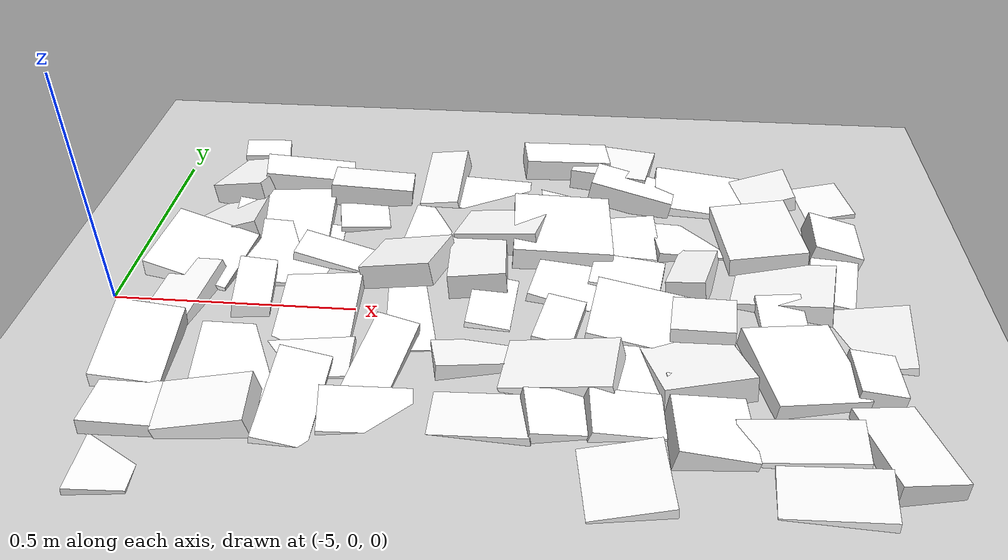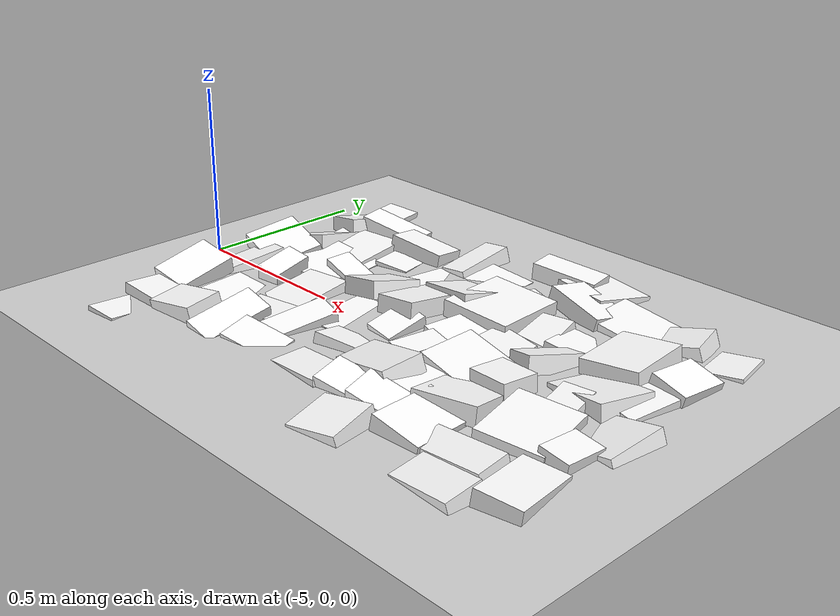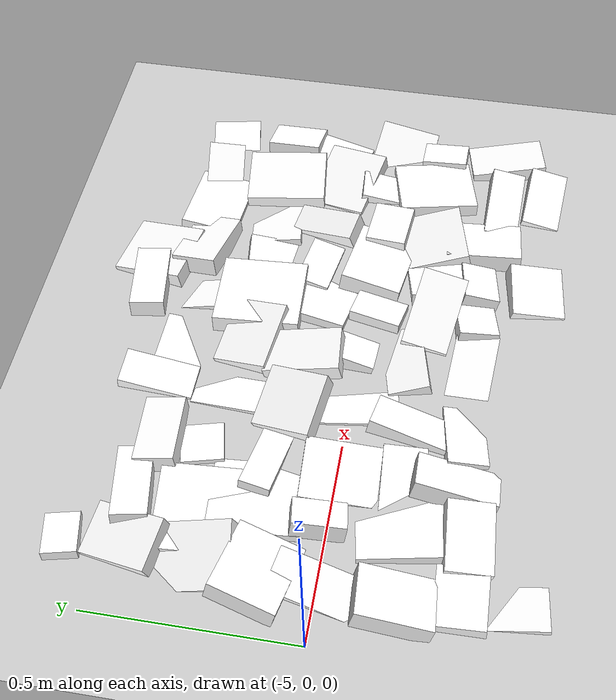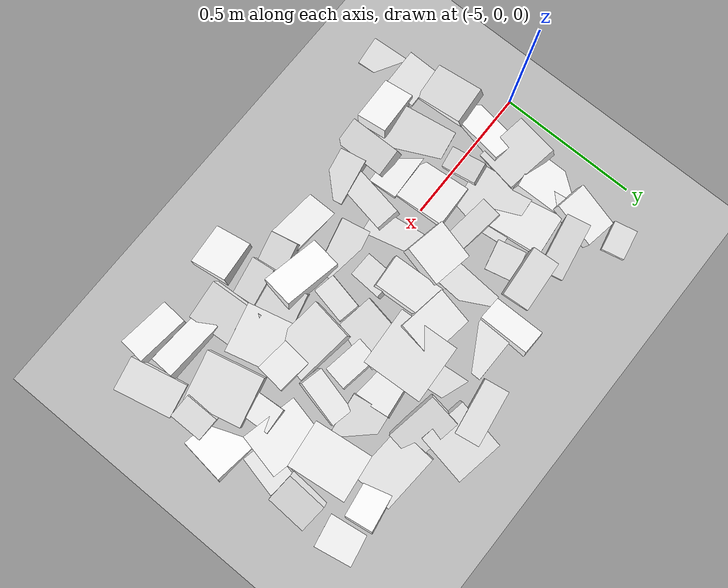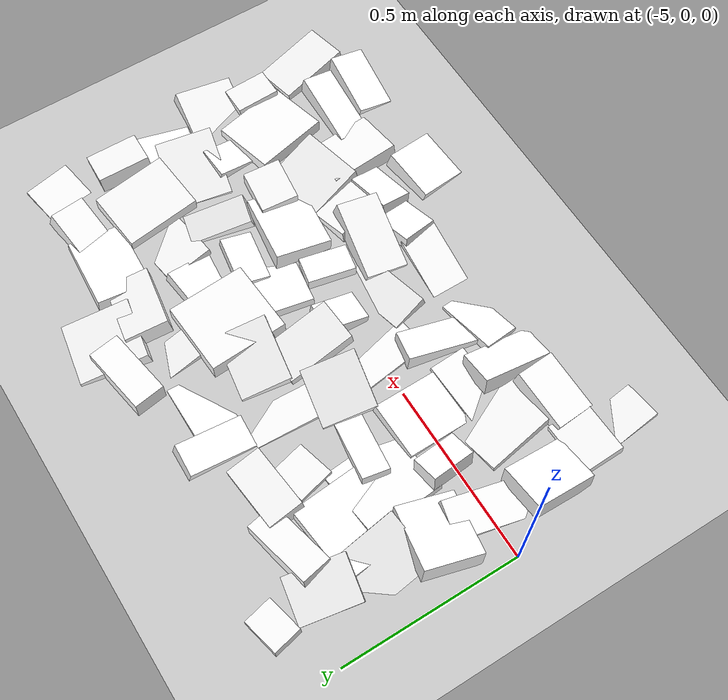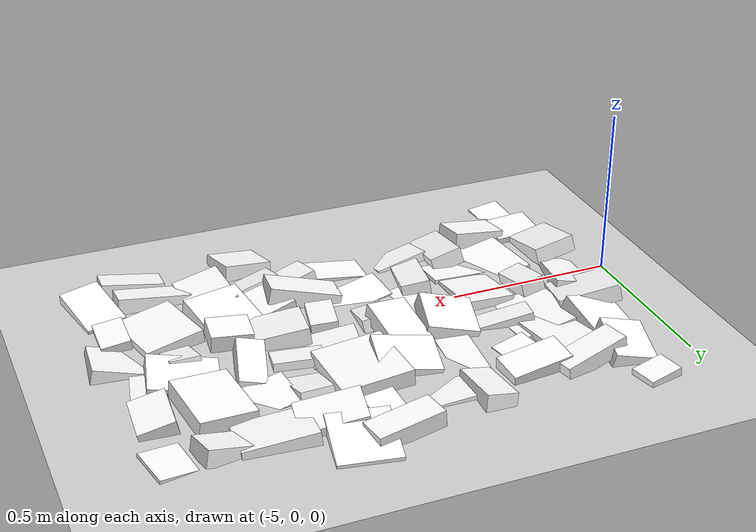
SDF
<sdf version="1.7">
 <world name="default">
  <include><uri>model://sun</uri></include>
  <include><uri>model://ground_plane</uri></include>
  <model name="static_environment">
   <static>true</static>
   <link name="region_133">
    <pose>-3.9795089519257782 0.574649046125805 0.00044835079384081267 0.170214213032232 -0.007524654286323484 2.965011449339123</pose>
    <collision name="region_133_collision">
     <geometry><box><size>0.17534049738056207 0.18718979881708145 0.05</size></box></geometry>
     <surface><friction><ode><mu>1.0</mu><mu2>1.0</mu2></ode></friction></surface>
    </collision>
    <visual name="region_133_visual">
     <geometry><box><size>0.17534049738056207 0.18718979881708145 0.05</size></box></geometry>
     <material><ambient>1.0 1.0 1.0 1.0</ambient><diffuse>1.0 1.0 1.0 1.0</diffuse></material>
    </visual>
   </link>
   <link name="region_134">
    <pose>-4.094930638773095 0.5717928075139347 0.023055060772423225 -0.009833687898736843 -0.0800342305586077 3.3000092581641702</pose>
    <collision name="region_134_collision">
     <geometry><box><size>0.19889755639854195 0.08673962148626173 0.05</size></box></geometry>
     <surface><friction><ode><mu>1.0</mu><mu2>1.0</mu2></ode></friction></surface>
    </collision>
    <visual name="region_134_visual">
     <geometry><box><size>0.19889755639854195 0.08673962148626173 0.05</size></box></geometry>
     <material><ambient>1.0 1.0 1.0 1.0</ambient><diffuse>1.0 1.0 1.0 1.0</diffuse></material>
    </visual>
   </link>
   <link name="region_139">
    <pose>-4.836495799420705 0.5837706913059889 -0.004070651850384289 0.017284858585840723 -0.09719315389216904 3.359345084625111</pose>
    <collision name="region_139_collision">
     <geometry><box><size>0.10582122075447274 0.08154338717244526 0.05</size></box></geometry>
     <surface><friction><ode><mu>1.0</mu><mu2>1.0</mu2></ode></friction></surface>
    </collision>
    <visual name="region_139_visual">
     <geometry><box><size>0.10582122075447274 0.08154338717244526 0.05</size></box></geometry>
     <material><ambient>1.0 1.0 1.0 1.0</ambient><diffuse>1.0 1.0 1.0 1.0</diffuse></material>
    </visual>
   </link>
   <link name="region_150">
    <pose>-3.501549717466175 0.4717631532022559 -0.022139818051866655 0.0042888951992146596 0.09757328563466916 3.3284522985641787</pose>
    <collision name="region_150_collision">
     <geometry><box><size>0.12426772657355908 0.1330524193768934 0.05</size></box></geometry>
     <surface><friction><ode><mu>1.0</mu><mu2>1.0</mu2></ode></friction></surface>
    </collision>
    <visual name="region_150_visual">
     <geometry><box><size>0.12426772657355908 0.1330524193768934 0.05</size></box></geometry>
     <material><ambient>1.0 1.0 1.0 1.0</ambient><diffuse>1.0 1.0 1.0 1.0</diffuse></material>
    </visual>
   </link>
   <link name="region_151">
    <pose>-3.6345684079839256 0.4764251820763707 0.005187594577890909 -0.14557207132012523 0.24685727497245558 3.281161751918272</pose>
    <collision name="region_151_collision">
     <geometry><box><size>0.1298728478875402 0.10021600310100176 0.05</size></box></geometry>
     <surface><friction><ode><mu>1.0</mu><mu2>1.0</mu2></ode></friction></surface>
    </collision>
    <visual name="region_151_visual">
     <geometry><box><size>0.1298728478875402 0.10021600310100176 0.05</size></box></geometry>
     <material><ambient>1.0 1.0 1.0 1.0</ambient><diffuse>1.0 1.0 1.0 1.0</diffuse></material>
    </visual>
   </link>
   <link name="region_152">
    <pose>-3.7811806753105435 0.46335909322320223 -0.003623981192343067 -0.09056033977986166 -0.08234724325951992 3.076538613729159</pose>
    <collision name="region_152_collision">
     <geometry><box><size>0.2097559328130741 0.1493497404227089 0.05</size></box></geometry>
     <surface><friction><ode><mu>1.0</mu><mu2>1.0</mu2></ode></friction></surface>
    </collision>
    <visual name="region_152_visual">
     <geometry><box><size>0.2097559328130741 0.1493497404227089 0.05</size></box></geometry>
     <material><ambient>1.0 1.0 1.0 1.0</ambient><diffuse>1.0 1.0 1.0 1.0</diffuse></material>
    </visual>
   </link>
   <link name="region_153">
    <pose>-3.937463878106142 0.45701922625572167 0.01481089140452365 0.15445395185810312 -0.16435714184399508 2.969763489640336</pose>
    <collision name="region_153_collision">
     <geometry><box><size>0.18700749862652458 0.12020930522267306 0.05</size></box></geometry>
     <surface><friction><ode><mu>1.0</mu><mu2>1.0</mu2></ode></friction></surface>
    </collision>
    <visual name="region_153_visual">
     <geometry><box><size>0.18700749862652458 0.12020930522267306 0.05</size></box></geometry>
     <material><ambient>1.0 1.0 1.0 1.0</ambient><diffuse>1.0 1.0 1.0 1.0</diffuse></material>
    </visual>
   </link>
   <link name="region_154">
    <pose>-4.0982184114410884 0.43112996197274955 -0.0222439493188153 0.15413326450859954 -0.0736210067693357 3.2367414242147836</pose>
    <collision name="region_154_collision">
     <geometry><box><size>0.0939086746460353 0.12610695431808672 0.05</size></box></geometry>
     <surface><friction><ode><mu>1.0</mu><mu2>1.0</mu2></ode></friction></surface>
    </collision>
    <visual name="region_154_visual">
     <geometry><box><size>0.0939086746460353 0.12610695431808672 0.05</size></box></geometry>
     <material><ambient>1.0 1.0 1.0 1.0</ambient><diffuse>1.0 1.0 1.0 1.0</diffuse></material>
    </visual>
   </link>
   <link name="region_155">
    <pose>-4.26429904964434 0.44894758650820266 -0.024382924216087995 -0.09701220259592974 -0.05631189676451864 3.136482111701895</pose>
    <collision name="region_155_collision">
     <geometry><box><size>0.17497054567080686 0.11994226667458904 0.05</size></box></geometry>
     <surface><friction><ode><mu>1.0</mu><mu2>1.0</mu2></ode></friction></surface>
    </collision>
    <visual name="region_155_visual">
     <geometry><box><size>0.17497054567080686 0.11994226667458904 0.05</size></box></geometry>
     <material><ambient>1.0 1.0 1.0 1.0</ambient><diffuse>1.0 1.0 1.0 1.0</diffuse></material>
    </visual>
   </link>
   <link name="region_156">
    <pose>-4.376294951007065 0.47972937947673633 0.0019502048551304774 -0.16139881131398393 0.13432908697854268 3.093017583781916</pose>
    <collision name="region_156_collision">
     <geometry><box><size>0.08874882262221645 0.18478351056948586 0.05</size></box></geometry>
     <surface><friction><ode><mu>1.0</mu><mu2>1.0</mu2></ode></friction></surface>
    </collision>
    <visual name="region_156_visual">
     <geometry><box><size>0.08874882262221645 0.18478351056948586 0.05</size></box></geometry>
     <material><ambient>1.0 1.0 1.0 1.0</ambient><diffuse>1.0 1.0 1.0 1.0</diffuse></material>
    </visual>
   </link>
   <link name="region_157">
    <pose>-4.541505392615168 0.42928006592529067 0.01386972632482305 0.11793235004464825 -0.1037312264085109 3.226270425010195</pose>
    <collision name="region_157_collision">
     <geometry><box><size>0.18528931789354486 0.09819742179364188 0.05</size></box></geometry>
     <surface><friction><ode><mu>1.0</mu><mu2>1.0</mu2></ode></friction></surface>
    </collision>
    <visual name="region_157_visual">
     <geometry><box><size>0.18528931789354486 0.09819742179364188 0.05</size></box></geometry>
     <material><ambient>1.0 1.0 1.0 1.0</ambient><diffuse>1.0 1.0 1.0 1.0</diffuse></material>
    </visual>
   </link>
   <link name="region_158">
    <pose>-4.696038178157421 0.45452142723220934 0.024356395909022756 -0.025953468332759022 -0.18295366509076916 3.34071855874957</pose>
    <collision name="region_158_collision">
     <geometry><box><size>0.2033711821210401 0.08479166280243756 0.05</size></box></geometry>
     <surface><friction><ode><mu>1.0</mu><mu2>1.0</mu2></ode></friction></surface>
    </collision>
    <visual name="region_158_visual">
     <geometry><box><size>0.2033711821210401 0.08479166280243756 0.05</size></box></geometry>
     <material><ambient>1.0 1.0 1.0 1.0</ambient><diffuse>1.0 1.0 1.0 1.0</diffuse></material>
    </visual>
   </link>
   <link name="region_159">
    <pose>-4.823823090812478 0.43979105658319595 0.014988513643660821 0.15643175212717803 0.20947934922514366 2.966412801531626</pose>
    <collision name="region_159_collision">
     <geometry><box><size>0.12500217326562607 0.16507961312182964 0.05</size></box></geometry>
     <surface><friction><ode><mu>1.0</mu><mu2>1.0</mu2></ode></friction></surface>
    </collision>
    <visual name="region_159_visual">
     <geometry><box><size>0.12500217326562607 0.16507961312182964 0.05</size></box></geometry>
     <material><ambient>1.0 1.0 1.0 1.0</ambient><diffuse>1.0 1.0 1.0 1.0</diffuse></material>
    </visual>
   </link>
   <link name="region_170">
    <pose>-3.507600614443394 0.2881663709877289 0.010369644690111923 0.06986474430687106 -0.22894318589666007 3.0641063771314743</pose>
    <collision name="region_170_collision">
     <geometry><box><size>0.10536326010167556 0.14612067975087553 0.05</size></box></geometry>
     <surface><friction><ode><mu>1.0</mu><mu2>1.0</mu2></ode></friction></surface>
    </collision>
    <visual name="region_170_visual">
     <geometry><box><size>0.10536326010167556 0.14612067975087553 0.05</size></box></geometry>
     <material><ambient>1.0 1.0 1.0 1.0</ambient><diffuse>1.0 1.0 1.0 1.0</diffuse></material>
    </visual>
   </link>
   <link name="region_171">
    <pose>-3.668316521911214 0.2886939156214142 0.017605253919817453 0.03296478802090108 0.08572706935795238 3.2608488976659937</pose>
    <collision name="region_171_collision">
     <geometry><box><size>0.16619526351678537 0.21172243492698042 0.05</size></box></geometry>
     <surface><friction><ode><mu>1.0</mu><mu2>1.0</mu2></ode></friction></surface>
    </collision>
    <visual name="region_171_visual">
     <geometry><box><size>0.16619526351678537 0.21172243492698042 0.05</size></box></geometry>
     <material><ambient>1.0 1.0 1.0 1.0</ambient><diffuse>1.0 1.0 1.0 1.0</diffuse></material>
    </visual>
   </link>
   <link name="region_172">
    <pose>-3.79854663270844 0.28929207426471015 -0.023704180302129802 0.09343863976034272 -0.1288095050315436 3.2650099319183234</pose>
    <collision name="region_172_collision">
     <geometry><box><size>0.19432395758099788 0.13422188477039676 0.05</size></box></geometry>
     <surface><friction><ode><mu>1.0</mu><mu2>1.0</mu2></ode></friction></surface>
    </collision>
    <visual name="region_172_visual">
     <geometry><box><size>0.19432395758099788 0.13422188477039676 0.05</size></box></geometry>
     <material><ambient>1.0 1.0 1.0 1.0</ambient><diffuse>1.0 1.0 1.0 1.0</diffuse></material>
    </visual>
   </link>
   <link name="region_173">
    <pose>-3.9678311583523698 0.27673564445606436 -0.015517437492212571 -0.22931290725654985 0.04888858812818686 3.256254680707327</pose>
    <collision name="region_173_collision">
     <geometry><box><size>0.16971889044296298 0.1339951754151947 0.05</size></box></geometry>
     <surface><friction><ode><mu>1.0</mu><mu2>1.0</mu2></ode></friction></surface>
    </collision>
    <visual name="region_173_visual">
     <geometry><box><size>0.16971889044296298 0.1339951754151947 0.05</size></box></geometry>
     <material><ambient>1.0 1.0 1.0 1.0</ambient><diffuse>1.0 1.0 1.0 1.0</diffuse></material>
    </visual>
   </link>
   <link name="region_174">
    <pose>-4.094341893352273 0.27863565437505555 0.017640977484312023 0.006459481364513797 -0.05468793864959892 3.1951904326741163</pose>
    <collision name="region_174_collision">
     <geometry><box><size>0.2117453371799521 0.2190020692192252 0.05</size></box></geometry>
     <surface><friction><ode><mu>1.0</mu><mu2>1.0</mu2></ode></friction></surface>
    </collision>
    <visual name="region_174_visual">
     <geometry><box><size>0.2117453371799521 0.2190020692192252 0.05</size></box></geometry>
     <material><ambient>1.0 1.0 1.0 1.0</ambient><diffuse>1.0 1.0 1.0 1.0</diffuse></material>
    </visual>
   </link>
   <link name="region_175">
    <pose>-4.223196349004232 0.27368066382770534 0.014698083292538987 0.19966338633009162 0.15414834099931374 2.998161887427554</pose>
    <collision name="region_175_collision">
     <geometry><box><size>0.18135667290933993 0.13857290186814222 0.05</size></box></geometry>
     <surface><friction><ode><mu>1.0</mu><mu2>1.0</mu2></ode></friction></surface>
    </collision>
    <visual name="region_175_visual">
     <geometry><box><size>0.18135667290933993 0.13857290186814222 0.05</size></box></geometry>
     <material><ambient>1.0 1.0 1.0 1.0</ambient><diffuse>1.0 1.0 1.0 1.0</diffuse></material>
    </visual>
   </link>
   <link name="region_176">
    <pose>-4.391483473223296 0.27367705466088404 -0.022658009665344415 0.043425796888531154 -0.07137661800411294 3.0786752252215313</pose>
    <collision name="region_176_collision">
     <geometry><box><size>0.09762890317799491 0.22073841437311614 0.05</size></box></geometry>
     <surface><friction><ode><mu>1.0</mu><mu2>1.0</mu2></ode></friction></surface>
    </collision>
    <visual name="region_176_visual">
     <geometry><box><size>0.09762890317799491 0.22073841437311614 0.05</size></box></geometry>
     <material><ambient>1.0 1.0 1.0 1.0</ambient><diffuse>1.0 1.0 1.0 1.0</diffuse></material>
    </visual>
   </link>
   <link name="region_177">
    <pose>-4.545753503291472 0.3283131357378465 -0.01949619642523295 0.03202887495100709 -0.10392997606887072 3.3707311001568585</pose>
    <collision name="region_177_collision">
     <geometry><box><size>0.10928244734717256 0.10323825948265071 0.05</size></box></geometry>
     <surface><friction><ode><mu>1.0</mu><mu2>1.0</mu2></ode></friction></surface>
    </collision>
    <visual name="region_177_visual">
     <geometry><box><size>0.10928244734717256 0.10323825948265071 0.05</size></box></geometry>
     <material><ambient>1.0 1.0 1.0 1.0</ambient><diffuse>1.0 1.0 1.0 1.0</diffuse></material>
    </visual>
   </link>
   <link name="region_178">
    <pose>-4.720405187765419 0.285322319762648 -0.008647692328182185 -0.07671111084763449 0.0054481557765695965 3.244484316516232</pose>
    <collision name="region_178_collision">
     <geometry><box><size>0.2196614902504646 0.2227195221169087 0.05</size></box></geometry>
     <surface><friction><ode><mu>1.0</mu><mu2>1.0</mu2></ode></friction></surface>
    </collision>
    <visual name="region_178_visual">
     <geometry><box><size>0.2196614902504646 0.2227195221169087 0.05</size></box></geometry>
     <material><ambient>1.0 1.0 1.0 1.0</ambient><diffuse>1.0 1.0 1.0 1.0</diffuse></material>
    </visual>
   </link>
   <link name="region_179">
    <pose>-4.837683751294579 0.2915425646125662 -0.004209977211674026 0.2318473825692236 0.23224546902507015 3.2923529911103127</pose>
    <collision name="region_179_collision">
     <geometry><box><size>0.15752704659282607 0.20813670010384766 0.05</size></box></geometry>
     <surface><friction><ode><mu>1.0</mu><mu2>1.0</mu2></ode></friction></surface>
    </collision>
    <visual name="region_179_visual">
     <geometry><box><size>0.15752704659282607 0.20813670010384766 0.05</size></box></geometry>
     <material><ambient>1.0 1.0 1.0 1.0</ambient><diffuse>1.0 1.0 1.0 1.0</diffuse></material>
    </visual>
   </link>
   <link name="region_190">
    <pose>-3.5299189631916894 0.1510806082933005 -0.009134467195322727 -0.08049755297903921 -0.05061615037986461 2.9399321404416763</pose>
    <collision name="region_190_collision">
     <geometry><box><size>0.09785876449965346 0.1464472158214041 0.05</size></box></geometry>
     <surface><friction><ode><mu>1.0</mu><mu2>1.0</mu2></ode></friction></surface>
    </collision>
    <visual name="region_190_visual">
     <geometry><box><size>0.09785876449965346 0.1464472158214041 0.05</size></box></geometry>
     <material><ambient>1.0 1.0 1.0 1.0</ambient><diffuse>1.0 1.0 1.0 1.0</diffuse></material>
    </visual>
   </link>
   <link name="region_191">
    <pose>-3.6297818503123445 0.12183835689815216 -0.0044859342985503585 0.07317742830067642 0.17660192533636426 2.9276869945220247</pose>
    <collision name="region_191_collision">
     <geometry><box><size>0.20082703177499545 0.1599241899353591 0.05</size></box></geometry>
     <surface><friction><ode><mu>1.0</mu><mu2>1.0</mu2></ode></friction></surface>
    </collision>
    <visual name="region_191_visual">
     <geometry><box><size>0.20082703177499545 0.1599241899353591 0.05</size></box></geometry>
     <material><ambient>1.0 1.0 1.0 1.0</ambient><diffuse>1.0 1.0 1.0 1.0</diffuse></material>
    </visual>
   </link>
   <link name="region_192">
    <pose>-3.815995573507702 0.1472315341989627 0.010931407661523604 0.21279713986770654 0.19934674387777757 2.928013825051837</pose>
    <collision name="region_192_collision">
     <geometry><box><size>0.08049794742514396 0.17107467915113123 0.05</size></box></geometry>
     <surface><friction><ode><mu>1.0</mu><mu2>1.0</mu2></ode></friction></surface>
    </collision>
    <visual name="region_192_visual">
     <geometry><box><size>0.08049794742514396 0.17107467915113123 0.05</size></box></geometry>
     <material><ambient>1.0 1.0 1.0 1.0</ambient><diffuse>1.0 1.0 1.0 1.0</diffuse></material>
    </visual>
   </link>
   <link name="region_193">
    <pose>-3.9525459149481166 0.14922839498735907 -0.008545288755037479 -0.15647982140211764 -0.015220761575641395 2.979083152136356</pose>
    <collision name="region_193_collision">
     <geometry><box><size>0.14874525593005802 0.08733805480922513 0.05</size></box></geometry>
     <surface><friction><ode><mu>1.0</mu><mu2>1.0</mu2></ode></friction></surface>
    </collision>
    <visual name="region_193_visual">
     <geometry><box><size>0.14874525593005802 0.08733805480922513 0.05</size></box></geometry>
     <material><ambient>1.0 1.0 1.0 1.0</ambient><diffuse>1.0 1.0 1.0 1.0</diffuse></material>
    </visual>
   </link>
   <link name="region_194">
    <pose>-4.071745830538734 0.13426798860974082 -0.01375707141590124 -0.03591319916329949 -0.16779594189138808 2.9677213369479447</pose>
    <collision name="region_194_collision">
     <geometry><box><size>0.14831460924106524 0.18510410539015726 0.05</size></box></geometry>
     <surface><friction><ode><mu>1.0</mu><mu2>1.0</mu2></ode></friction></surface>
    </collision>
    <visual name="region_194_visual">
     <geometry><box><size>0.14831460924106524 0.18510410539015726 0.05</size></box></geometry>
     <material><ambient>1.0 1.0 1.0 1.0</ambient><diffuse>1.0 1.0 1.0 1.0</diffuse></material>
    </visual>
   </link>
   <link name="region_195">
    <pose>-4.263401470788022 0.1351513484429039 0.02485550375131445 0.18413107651438082 0.07073730432877251 3.2294726165853174</pose>
    <collision name="region_195_collision">
     <geometry><box><size>0.11882376036206337 0.19308182914945735 0.05</size></box></geometry>
     <surface><friction><ode><mu>1.0</mu><mu2>1.0</mu2></ode></friction></surface>
    </collision>
    <visual name="region_195_visual">
     <geometry><box><size>0.11882376036206337 0.19308182914945735 0.05</size></box></geometry>
     <material><ambient>1.0 1.0 1.0 1.0</ambient><diffuse>1.0 1.0 1.0 1.0</diffuse></material>
    </visual>
   </link>
   <link name="region_196">
    <pose>-4.411988027600259 0.13660639349209888 0.02430145678127188 0.19727016395654356 0.23915313570790642 2.9805661914501216</pose>
    <collision name="region_196_collision">
     <geometry><box><size>0.1572895146162047 0.1485146122661266 0.05</size></box></geometry>
     <surface><friction><ode><mu>1.0</mu><mu2>1.0</mu2></ode></friction></surface>
    </collision>
    <visual name="region_196_visual">
     <geometry><box><size>0.1572895146162047 0.1485146122661266 0.05</size></box></geometry>
     <material><ambient>1.0 1.0 1.0 1.0</ambient><diffuse>1.0 1.0 1.0 1.0</diffuse></material>
    </visual>
   </link>
   <link name="region_197">
    <pose>-4.566173072321947 0.16988400728181005 -0.008987632976641097 -0.07095374562769663 -0.18919025111250404 2.9950359218968354</pose>
    <collision name="region_197_collision">
     <geometry><box><size>0.18857486813486377 0.07622669570913432 0.05</size></box></geometry>
     <surface><friction><ode><mu>1.0</mu><mu2>1.0</mu2></ode></friction></surface>
    </collision>
    <visual name="region_197_visual">
     <geometry><box><size>0.18857486813486377 0.07622669570913432 0.05</size></box></geometry>
     <material><ambient>1.0 1.0 1.0 1.0</ambient><diffuse>1.0 1.0 1.0 1.0</diffuse></material>
    </visual>
   </link>
   <link name="region_198">
    <pose>-4.67152545296455 0.1739687555007491 -0.01512471850324959 -0.03651501950641162 -0.11946600117542866 3.2379438439434325</pose>
    <collision name="region_198_collision">
     <geometry><box><size>0.1999832019547301 0.2150221670040595 0.05</size></box></geometry>
     <surface><friction><ode><mu>1.0</mu><mu2>1.0</mu2></ode></friction></surface>
    </collision>
    <visual name="region_198_visual">
     <geometry><box><size>0.1999832019547301 0.2150221670040595 0.05</size></box></geometry>
     <material><ambient>1.0 1.0 1.0 1.0</ambient><diffuse>1.0 1.0 1.0 1.0</diffuse></material>
    </visual>
   </link>
   <link name="region_199">
    <pose>-4.856373030032133 0.13651651664182252 0.01588174381360343 -0.18596308200609468 -0.19574430584567304 2.956748839674979</pose>
    <collision name="region_199_collision">
     <geometry><box><size>0.18580649976856728 0.16132644721481737 0.05</size></box></geometry>
     <surface><friction><ode><mu>1.0</mu><mu2>1.0</mu2></ode></friction></surface>
    </collision>
    <visual name="region_199_visual">
     <geometry><box><size>0.18580649976856728 0.16132644721481737 0.05</size></box></geometry>
     <material><ambient>1.0 1.0 1.0 1.0</ambient><diffuse>1.0 1.0 1.0 1.0</diffuse></material>
    </visual>
   </link>
   <link name="region_210">
    <pose>-3.4975655002798836 -0.01682367962261789 -0.0181998770351414 -0.12759347193872378 0.24910986796165624 3.019011981942229</pose>
    <collision name="region_210_collision">
     <geometry><box><size>0.19508509455642814 0.16435313467491203 0.05</size></box></geometry>
     <surface><friction><ode><mu>1.0</mu><mu2>1.0</mu2></ode></friction></surface>
    </collision>
    <visual name="region_210_visual">
     <geometry><box><size>0.19508509455642814 0.16435313467491203 0.05</size></box></geometry>
     <material><ambient>1.0 1.0 1.0 1.0</ambient><diffuse>1.0 1.0 1.0 1.0</diffuse></material>
    </visual>
   </link>
   <link name="region_211">
    <pose>-3.646524879048309 -0.0009551659507594318 -0.012484006248102326 -0.23866290301592463 0.041735822200817674 3.2182802272322855</pose>
    <collision name="region_211_collision">
     <geometry><box><size>0.09088398552009201 0.1673992755381036 0.05</size></box></geometry>
     <surface><friction><ode><mu>1.0</mu><mu2>1.0</mu2></ode></friction></surface>
    </collision>
    <visual name="region_211_visual">
     <geometry><box><size>0.09088398552009201 0.1673992755381036 0.05</size></box></geometry>
     <material><ambient>1.0 1.0 1.0 1.0</ambient><diffuse>1.0 1.0 1.0 1.0</diffuse></material>
    </visual>
   </link>
   <link name="region_212">
    <pose>-3.8078948522635656 -0.02130477820370173 0.02280245707693905 0.040705581225527865 0.06549971163998758 3.0401230237477193</pose>
    <collision name="region_212_collision">
     <geometry><box><size>0.12330625569469356 0.10516245058101502 0.05</size></box></geometry>
     <surface><friction><ode><mu>1.0</mu><mu2>1.0</mu2></ode></friction></surface>
    </collision>
    <visual name="region_212_visual">
     <geometry><box><size>0.12330625569469356 0.10516245058101502 0.05</size></box></geometry>
     <material><ambient>1.0 1.0 1.0 1.0</ambient><diffuse>1.0 1.0 1.0 1.0</diffuse></material>
    </visual>
   </link>
   <link name="region_213">
    <pose>-3.9241095617601442 -0.007150321018748683 0.003945490703327493 -0.11825544808463939 -0.12236519809558838 3.0092926620681455</pose>
    <collision name="region_213_collision">
     <geometry><box><size>0.2097466503018947 0.15747184402854195 0.05</size></box></geometry>
     <surface><friction><ode><mu>1.0</mu><mu2>1.0</mu2></ode></friction></surface>
    </collision>
    <visual name="region_213_visual">
     <geometry><box><size>0.2097466503018947 0.15747184402854195 0.05</size></box></geometry>
     <material><ambient>1.0 1.0 1.0 1.0</ambient><diffuse>1.0 1.0 1.0 1.0</diffuse></material>
    </visual>
   </link>
   <link name="region_214">
    <pose>-4.089248240172022 -0.028112152263510003 0.0010640666339866087 -0.02269141074262493 -0.07759414917341645 2.938046621069439</pose>
    <collision name="region_214_collision">
     <geometry><box><size>0.07953194547043728 0.1331881210593902 0.05</size></box></geometry>
     <surface><friction><ode><mu>1.0</mu><mu2>1.0</mu2></ode></friction></surface>
    </collision>
    <visual name="region_214_visual">
     <geometry><box><size>0.07953194547043728 0.1331881210593902 0.05</size></box></geometry>
     <material><ambient>1.0 1.0 1.0 1.0</ambient><diffuse>1.0 1.0 1.0 1.0</diffuse></material>
    </visual>
   </link>
   <link name="region_215">
    <pose>-4.227047482202002 0.023223652834975062 0.0005983623515771475 -0.24343598672483174 -0.14067675517547773 3.094843654591973</pose>
    <collision name="region_215_collision">
     <geometry><box><size>0.09070765897608841 0.12427858548727667 0.05</size></box></geometry>
     <surface><friction><ode><mu>1.0</mu><mu2>1.0</mu2></ode></friction></surface>
    </collision>
    <visual name="region_215_visual">
     <geometry><box><size>0.09070765897608841 0.12427858548727667 0.05</size></box></geometry>
     <material><ambient>1.0 1.0 1.0 1.0</ambient><diffuse>1.0 1.0 1.0 1.0</diffuse></material>
    </visual>
   </link>
   <link name="region_216">
    <pose>-4.384517214160384 -0.010728517261660018 -0.023914415716243954 0.008816685626059584 -0.0782183341591226 3.272208282481981</pose>
    <collision name="region_216_collision">
     <geometry><box><size>0.10204579248876276 0.2155114475071463 0.05</size></box></geometry>
     <surface><friction><ode><mu>1.0</mu><mu2>1.0</mu2></ode></friction></surface>
    </collision>
    <visual name="region_216_visual">
     <geometry><box><size>0.10204579248876276 0.2155114475071463 0.05</size></box></geometry>
     <material><ambient>1.0 1.0 1.0 1.0</ambient><diffuse>1.0 1.0 1.0 1.0</diffuse></material>
    </visual>
   </link>
   <link name="region_217">
    <pose>-4.57234124606398 -0.005682953295649336 -0.012171590958399026 -0.11667095102656938 0.06622854546747081 3.18101812928263</pose>
    <collision name="region_217_collision">
     <geometry><box><size>0.15823859029656318 0.18439855349524337 0.05</size></box></geometry>
     <surface><friction><ode><mu>1.0</mu><mu2>1.0</mu2></ode></friction></surface>
    </collision>
    <visual name="region_217_visual">
     <geometry><box><size>0.15823859029656318 0.18439855349524337 0.05</size></box></geometry>
     <material><ambient>1.0 1.0 1.0 1.0</ambient><diffuse>1.0 1.0 1.0 1.0</diffuse></material>
    </visual>
   </link>
   <link name="region_218">
    <pose>-4.710462716120091 0.02205021424062334 0.022439624105443368 -0.15745964494248949 -0.20359048551591685 3.29106963821758</pose>
    <collision name="region_218_collision">
     <geometry><box><size>0.07537682790059431 0.12686512531553032 0.05</size></box></geometry>
     <surface><friction><ode><mu>1.0</mu><mu2>1.0</mu2></ode></friction></surface>
    </collision>
    <visual name="region_218_visual">
     <geometry><box><size>0.07537682790059431 0.12686512531553032 0.05</size></box></geometry>
     <material><ambient>1.0 1.0 1.0 1.0</ambient><diffuse>1.0 1.0 1.0 1.0</diffuse></material>
    </visual>
   </link>
   <link name="region_219">
    <pose>-4.860430220963037 0.0013740063551523835 -0.0062036707604720305 -0.15860006952497835 0.13872678920801929 2.9311632619071024</pose>
    <collision name="region_219_collision">
     <geometry><box><size>0.10377233230437027 0.20910902377414195 0.05</size></box></geometry>
     <surface><friction><ode><mu>1.0</mu><mu2>1.0</mu2></ode></friction></surface>
    </collision>
    <visual name="region_219_visual">
     <geometry><box><size>0.10377233230437027 0.20910902377414195 0.05</size></box></geometry>
     <material><ambient>1.0 1.0 1.0 1.0</ambient><diffuse>1.0 1.0 1.0 1.0</diffuse></material>
    </visual>
   </link>
   <link name="region_230">
    <pose>-3.5012839089467938 -0.14166705943458976 0.003157888197684283 0.06823315731398949 -0.11917785324480823 3.1204739164347974</pose>
    <collision name="region_230_collision">
     <geometry><box><size>0.08650922935042561 0.12227373922901735 0.05</size></box></geometry>
     <surface><friction><ode><mu>1.0</mu><mu2>1.0</mu2></ode></friction></surface>
    </collision>
    <visual name="region_230_visual">
     <geometry><box><size>0.08650922935042561 0.12227373922901735 0.05</size></box></geometry>
     <material><ambient>1.0 1.0 1.0 1.0</ambient><diffuse>1.0 1.0 1.0 1.0</diffuse></material>
    </visual>
   </link>
   <link name="region_231">
    <pose>-3.6313453476122537 -0.12473647598930424 0.0032161987452037286 -0.023913891093815365 -0.08367878915786625 3.370782412207421</pose>
    <collision name="region_231_collision">
     <geometry><box><size>0.17840066291127823 0.20947342602827393 0.05</size></box></geometry>
     <surface><friction><ode><mu>1.0</mu><mu2>1.0</mu2></ode></friction></surface>
    </collision>
    <visual name="region_231_visual">
     <geometry><box><size>0.17840066291127823 0.20947342602827393 0.05</size></box></geometry>
     <material><ambient>1.0 1.0 1.0 1.0</ambient><diffuse>1.0 1.0 1.0 1.0</diffuse></material>
    </visual>
   </link>
   <link name="region_232">
    <pose>-3.82981025933403 -0.13765948162590047 0.0067570938861888225 0.22500120631059956 0.01818597926525023 3.3912398156262022</pose>
    <collision name="region_232_collision">
     <geometry><box><size>0.17507138751042148 0.18224786953836072 0.05</size></box></geometry>
     <surface><friction><ode><mu>1.0</mu><mu2>1.0</mu2></ode></friction></surface>
    </collision>
    <visual name="region_232_visual">
     <geometry><box><size>0.17507138751042148 0.18224786953836072 0.05</size></box></geometry>
     <material><ambient>1.0 1.0 1.0 1.0</ambient><diffuse>1.0 1.0 1.0 1.0</diffuse></material>
    </visual>
   </link>
   <link name="region_233">
    <pose>-3.9644133478415666 -0.17231183901951286 0.0006411265924610894 0.03325037894944122 -0.18147767639875018 3.3592921564765237</pose>
    <collision name="region_233_collision">
     <geometry><box><size>0.12395330649960384 0.1556242081499808 0.05</size></box></geometry>
     <surface><friction><ode><mu>1.0</mu><mu2>1.0</mu2></ode></friction></surface>
    </collision>
    <visual name="region_233_visual">
     <geometry><box><size>0.12395330649960384 0.1556242081499808 0.05</size></box></geometry>
     <material><ambient>1.0 1.0 1.0 1.0</ambient><diffuse>1.0 1.0 1.0 1.0</diffuse></material>
    </visual>
   </link>
   <link name="region_234">
    <pose>-4.077151770664403 -0.1703759452049441 0.016906278528743116 -0.13001261298383793 0.23506270063128681 2.9858007295677336</pose>
    <collision name="region_234_collision">
     <geometry><box><size>0.2161069911698418 0.11811174779750037 0.05</size></box></geometry>
     <surface><friction><ode><mu>1.0</mu><mu2>1.0</mu2></ode></friction></surface>
    </collision>
    <visual name="region_234_visual">
     <geometry><box><size>0.2161069911698418 0.11811174779750037 0.05</size></box></geometry>
     <material><ambient>1.0 1.0 1.0 1.0</ambient><diffuse>1.0 1.0 1.0 1.0</diffuse></material>
    </visual>
   </link>
   <link name="region_235">
    <pose>-4.225533337313701 -0.12002381309174179 -0.017281214982861916 0.23657142334704023 -0.08985709326718261 3.363542072836526</pose>
    <collision name="region_235_collision">
     <geometry><box><size>0.2021747961670018 0.10444141396667934 0.05</size></box></geometry>
     <surface><friction><ode><mu>1.0</mu><mu2>1.0</mu2></ode></friction></surface>
    </collision>
    <visual name="region_235_visual">
     <geometry><box><size>0.2021747961670018 0.10444141396667934 0.05</size></box></geometry>
     <material><ambient>1.0 1.0 1.0 1.0</ambient><diffuse>1.0 1.0 1.0 1.0</diffuse></material>
    </visual>
   </link>
   <link name="region_236">
    <pose>-4.422247613823584 -0.1598670728142138 -0.003155423454908622 -0.14354636536943743 -0.14051330923540617 2.9632286972967035</pose>
    <collision name="region_236_collision">
     <geometry><box><size>0.08738263108863871 0.20849778001936062 0.05</size></box></geometry>
     <surface><friction><ode><mu>1.0</mu><mu2>1.0</mu2></ode></friction></surface>
    </collision>
    <visual name="region_236_visual">
     <geometry><box><size>0.08738263108863871 0.20849778001936062 0.05</size></box></geometry>
     <material><ambient>1.0 1.0 1.0 1.0</ambient><diffuse>1.0 1.0 1.0 1.0</diffuse></material>
    </visual>
   </link>
   <link name="region_237">
    <pose>-4.579419777909875 -0.15384232834573788 -0.02447027998049331 -0.05335264711387078 0.07628508905068165 3.201220609331995</pose>
    <collision name="region_237_collision">
     <geometry><box><size>0.20898879939127446 0.10574292797015215 0.05</size></box></geometry>
     <surface><friction><ode><mu>1.0</mu><mu2>1.0</mu2></ode></friction></surface>
    </collision>
    <visual name="region_237_visual">
     <geometry><box><size>0.20898879939127446 0.10574292797015215 0.05</size></box></geometry>
     <material><ambient>1.0 1.0 1.0 1.0</ambient><diffuse>1.0 1.0 1.0 1.0</diffuse></material>
    </visual>
   </link>
   <link name="region_238">
    <pose>-4.693572369249468 -0.17466839723653563 -0.018804538925910483 0.043302678594998034 -0.15078748331191405 3.304855863004324</pose>
    <collision name="region_238_collision">
     <geometry><box><size>0.1632172238170572 0.22409020427603188 0.05</size></box></geometry>
     <surface><friction><ode><mu>1.0</mu><mu2>1.0</mu2></ode></friction></surface>
    </collision>
    <visual name="region_238_visual">
     <geometry><box><size>0.1632172238170572 0.22409020427603188 0.05</size></box></geometry>
     <material><ambient>1.0 1.0 1.0 1.0</ambient><diffuse>1.0 1.0 1.0 1.0</diffuse></material>
    </visual>
   </link>
   <link name="region_239">
    <pose>-4.879311198349162 -0.17150081066773448 0.021743609166741777 -0.21949572574329307 -0.16978909103517265 3.197938424753549</pose>
    <collision name="region_239_collision">
     <geometry><box><size>0.13174912472317046 0.17770253250423745 0.05</size></box></geometry>
     <surface><friction><ode><mu>1.0</mu><mu2>1.0</mu2></ode></friction></surface>
    </collision>
    <visual name="region_239_visual">
     <geometry><box><size>0.13174912472317046 0.17770253250423745 0.05</size></box></geometry>
     <material><ambient>1.0 1.0 1.0 1.0</ambient><diffuse>1.0 1.0 1.0 1.0</diffuse></material>
    </visual>
   </link>
   <link name="region_250">
    <pose>-3.4848695608027422 -0.3164416055182227 -0.00018237929432794384 0.1167647309974757 -0.08486321541433078 3.334673502125911</pose>
    <collision name="region_250_collision">
     <geometry><box><size>0.11997482781860819 0.20307270675640784 0.05</size></box></geometry>
     <surface><friction><ode><mu>1.0</mu><mu2>1.0</mu2></ode></friction></surface>
    </collision>
    <visual name="region_250_visual">
     <geometry><box><size>0.11997482781860819 0.20307270675640784 0.05</size></box></geometry>
     <material><ambient>1.0 1.0 1.0 1.0</ambient><diffuse>1.0 1.0 1.0 1.0</diffuse></material>
    </visual>
   </link>
   <link name="region_251">
    <pose>-3.660370941721248 -0.31749135904882386 0.0021700558813057824 -0.15909875674227408 0.11338143211424812 3.105044077697583</pose>
    <collision name="region_251_collision">
     <geometry><box><size>0.2167718157336074 0.08976212012241057 0.05</size></box></geometry>
     <surface><friction><ode><mu>1.0</mu><mu2>1.0</mu2></ode></friction></surface>
    </collision>
    <visual name="region_251_visual">
     <geometry><box><size>0.2167718157336074 0.08976212012241057 0.05</size></box></geometry>
     <material><ambient>1.0 1.0 1.0 1.0</ambient><diffuse>1.0 1.0 1.0 1.0</diffuse></material>
    </visual>
   </link>
   <link name="region_252">
    <pose>-3.8165031229701056 -0.27661746548831584 0.0035040254869103116 0.019842299112910577 -0.19962415259587507 3.198002221232967</pose>
    <collision name="region_252_collision">
     <geometry><box><size>0.14404156901419998 0.19555528860179047 0.05</size></box></geometry>
     <surface><friction><ode><mu>1.0</mu><mu2>1.0</mu2></ode></friction></surface>
    </collision>
    <visual name="region_252_visual">
     <geometry><box><size>0.14404156901419998 0.19555528860179047 0.05</size></box></geometry>
     <material><ambient>1.0 1.0 1.0 1.0</ambient><diffuse>1.0 1.0 1.0 1.0</diffuse></material>
    </visual>
   </link>
   <link name="region_253">
    <pose>-3.9640225240069906 -0.2737513695623445 0.0036522709136393647 -0.24091937899675947 -0.19661173647226854 3.286560695836633</pose>
    <collision name="region_253_collision">
     <geometry><box><size>0.13560168169748263 0.09219381303605392 0.05</size></box></geometry>
     <surface><friction><ode><mu>1.0</mu><mu2>1.0</mu2></ode></friction></surface>
    </collision>
    <visual name="region_253_visual">
     <geometry><box><size>0.13560168169748263 0.09219381303605392 0.05</size></box></geometry>
     <material><ambient>1.0 1.0 1.0 1.0</ambient><diffuse>1.0 1.0 1.0 1.0</diffuse></material>
    </visual>
   </link>
   <link name="region_254">
    <pose>-4.075968094283406 -0.27597154743748276 -0.0024465602548105862 -0.13921428191634977 -0.18924673289264604 3.3452938424024983</pose>
    <collision name="region_254_collision">
     <geometry><box><size>0.1351028871714808 0.10220091906229367 0.05</size></box></geometry>
     <surface><friction><ode><mu>1.0</mu><mu2>1.0</mu2></ode></friction></surface>
    </collision>
    <visual name="region_254_visual">
     <geometry><box><size>0.1351028871714808 0.10220091906229367 0.05</size></box></geometry>
     <material><ambient>1.0 1.0 1.0 1.0</ambient><diffuse>1.0 1.0 1.0 1.0</diffuse></material>
    </visual>
   </link>
   <link name="region_255">
    <pose>-4.220198930730184 -0.2825444063631064 -0.017986510963675983 -0.007306317460900991 0.10064837925012177 3.0680291744125525</pose>
    <collision name="region_255_collision">
     <geometry><box><size>0.2013658965970659 0.10783970492663172 0.05</size></box></geometry>
     <surface><friction><ode><mu>1.0</mu><mu2>1.0</mu2></ode></friction></surface>
    </collision>
    <visual name="region_255_visual">
     <geometry><box><size>0.2013658965970659 0.10783970492663172 0.05</size></box></geometry>
     <material><ambient>1.0 1.0 1.0 1.0</ambient><diffuse>1.0 1.0 1.0 1.0</diffuse></material>
    </visual>
   </link>
   <link name="region_256">
    <pose>-4.4282712346487765 -0.2823093259185003 -0.017478695222291625 -0.17794168296386553 -0.1378865376304455 3.303759285666768</pose>
    <collision name="region_256_collision">
     <geometry><box><size>0.1703273175809376 0.1004781155387426 0.05</size></box></geometry>
     <surface><friction><ode><mu>1.0</mu><mu2>1.0</mu2></ode></friction></surface>
    </collision>
    <visual name="region_256_visual">
     <geometry><box><size>0.1703273175809376 0.1004781155387426 0.05</size></box></geometry>
     <material><ambient>1.0 1.0 1.0 1.0</ambient><diffuse>1.0 1.0 1.0 1.0</diffuse></material>
    </visual>
   </link>
   <link name="region_257">
    <pose>-4.561547690699594 -0.27507157681046035 0.0023366002927972356 -0.20196731088195397 -0.24354504268637744 3.146278227836048</pose>
    <collision name="region_257_collision">
     <geometry><box><size>0.10034960141201153 0.20087766628252215 0.05</size></box></geometry>
     <surface><friction><ode><mu>1.0</mu><mu2>1.0</mu2></ode></friction></surface>
    </collision>
    <visual name="region_257_visual">
     <geometry><box><size>0.10034960141201153 0.20087766628252215 0.05</size></box></geometry>
     <material><ambient>1.0 1.0 1.0 1.0</ambient><diffuse>1.0 1.0 1.0 1.0</diffuse></material>
    </visual>
   </link>
   <link name="region_258">
    <pose>-4.702085761075125 -0.31705471615034403 0.016780308294409955 -0.10404370257739115 0.1530733818581923 3.2127862113702563</pose>
    <collision name="region_258_collision">
     <geometry><box><size>0.16834911907408254 0.11057798305451554 0.05</size></box></geometry>
     <surface><friction><ode><mu>1.0</mu><mu2>1.0</mu2></ode></friction></surface>
    </collision>
    <visual name="region_258_visual">
     <geometry><box><size>0.16834911907408254 0.11057798305451554 0.05</size></box></geometry>
     <material><ambient>1.0 1.0 1.0 1.0</ambient><diffuse>1.0 1.0 1.0 1.0</diffuse></material>
    </visual>
   </link>
   <link name="region_259">
    <pose>-4.8442815654260105 -0.31569306377623313 -0.0019611966461389255 0.06389509144133676 -0.04551244222115036 3.1558812217396706</pose>
    <collision name="region_259_collision">
     <geometry><box><size>0.1482313405757877 0.11884981956923846 0.05</size></box></geometry>
     <surface><friction><ode><mu>1.0</mu><mu2>1.0</mu2></ode></friction></surface>
    </collision>
    <visual name="region_259_visual">
     <geometry><box><size>0.1482313405757877 0.11884981956923846 0.05</size></box></geometry>
     <material><ambient>1.0 1.0 1.0 1.0</ambient><diffuse>1.0 1.0 1.0 1.0</diffuse></material>
    </visual>
   </link>
   <link name="region_271">
    <pose>-3.6214403337687817 -0.4257438066235906 -0.0024773927792940964 -0.1710247893614949 0.13148262223736573 3.0577984290239906</pose>
    <collision name="region_271_collision">
     <geometry><box><size>0.1873389022676368 0.0999135801985966 0.05</size></box></geometry>
     <surface><friction><ode><mu>1.0</mu><mu2>1.0</mu2></ode></friction></surface>
    </collision>
    <visual name="region_271_visual">
     <geometry><box><size>0.1873389022676368 0.0999135801985966 0.05</size></box></geometry>
     <material><ambient>1.0 1.0 1.0 1.0</ambient><diffuse>1.0 1.0 1.0 1.0</diffuse></material>
    </visual>
   </link>
   <link name="region_273">
    <pose>-3.961229814390488 -0.42288189860389985 0.0014911129457103774 -0.16275867053532095 0.14849681980210339 3.26915383078058</pose>
    <collision name="region_273_collision">
     <geometry><box><size>0.14952811331507182 0.1376131994514184 0.05</size></box></geometry>
     <surface><friction><ode><mu>1.0</mu><mu2>1.0</mu2></ode></friction></surface>
    </collision>
    <visual name="region_273_visual">
     <geometry><box><size>0.14952811331507182 0.1376131994514184 0.05</size></box></geometry>
     <material><ambient>1.0 1.0 1.0 1.0</ambient><diffuse>1.0 1.0 1.0 1.0</diffuse></material>
    </visual>
   </link>
   <link name="region_279">
    <pose>-4.843245791640372 -0.42954594977680055 -0.024632213863794175 0.09955445152172027 -0.07221171705816593 3.236522950372329</pose>
    <collision name="region_279_collision">
     <geometry><box><size>0.10509463845883997 0.15908607597833538 0.05</size></box></geometry>
     <surface><friction><ode><mu>1.0</mu><mu2>1.0</mu2></ode></friction></surface>
    </collision>
    <visual name="region_279_visual">
     <geometry><box><size>0.10509463845883997 0.15908607597833538 0.05</size></box></geometry>
     <material><ambient>1.0 1.0 1.0 1.0</ambient><diffuse>1.0 1.0 1.0 1.0</diffuse></material>
    </visual>
   </link>
  </model>
 </world>
</sdf>
